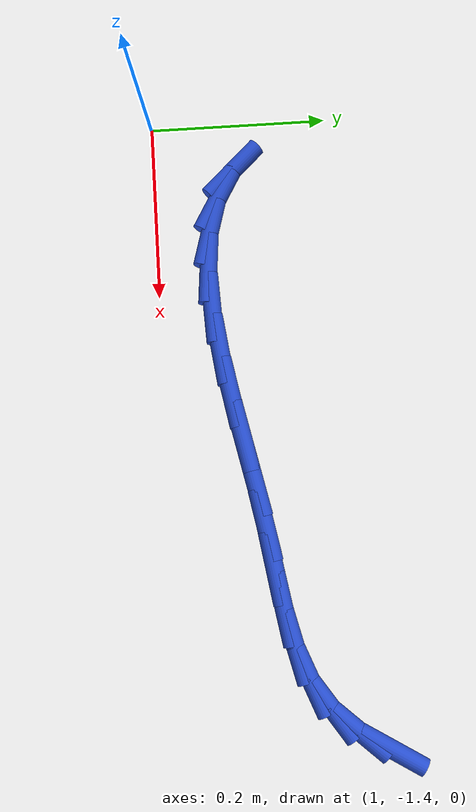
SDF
<sdf version="1.6">
 <world name="default">
  <model name="ground_plane">
   <static>1</static>
   <link name="link">
    <collision name="collision">
     <geometry><plane><normal>0 0 1</normal><size>100 100</size></plane></geometry>
     <surface><friction><ode><mu>100</mu><mu2>50</mu2></ode></friction></surface>
    </collision>
    <visual name="visual">
     <cast_shadows>0</cast_shadows>
     <geometry><plane><normal>0 0 1</normal><size>100 100</size></plane></geometry>
     <material>
      <script><uri>file://media/materials/scripts/gazebo.material</uri><name>Gazebo/WhiteGlow</name></script>
     </material>
    </visual>
   </link>
  </model>
  <model name="line">
   <link name="link_135">
    <pose>1.705742062912306 -1.1776208175139813 0.01 0 1.57 1.013647777230518</pose>
    <collision name="collision">
     <geometry><cylinder><radius>0.01</radius><length>0.08</length></cylinder></geometry>
    </collision>
    <visual name="visual">
     <material>
      <script><name>Gazebo/Blue</name><uri>file://media/materials/scripts/gazebo.material</uri></script>
     </material>
     <geometry><cylinder><radius>0.01</radius><length>0.08</length></cylinder></geometry>
    </visual>
   </link>
   <link name="link_136">
    <pose>1.6851977276796983 -1.210598106695495 0.01 0 1.57 0.8275461408577619</pose>
    <collision name="collision">
     <geometry><cylinder><radius>0.01</radius><length>0.08</length></cylinder></geometry>
    </collision>
    <visual name="visual">
     <material>
      <script><name>Gazebo/Blue</name><uri>file://media/materials/scripts/gazebo.material</uri></script>
     </material>
     <geometry><cylinder><radius>0.01</radius><length>0.08</length></cylinder></geometry>
    </visual>
   </link>
   <link name="link_137">
    <pose>1.660251027510578 -1.2377416043370164 0.01 0 1.57 0.587581772900265</pose>
    <collision name="collision">
     <geometry><cylinder><radius>0.01</radius><length>0.08</length></cylinder></geometry>
    </collision>
    <visual name="visual">
     <material>
      <script><name>Gazebo/Blue</name><uri>file://media/materials/scripts/gazebo.material</uri></script>
     </material>
     <geometry><cylinder><radius>0.01</radius><length>0.08</length></cylinder></geometry>
    </visual>
   </link>
   <link name="link_138">
    <pose>1.629923951497857 -1.2579412253683173 0.01 0 1.57 0.37062882357609594</pose>
    <collision name="collision">
     <geometry><cylinder><radius>0.01</radius><length>0.08</length></cylinder></geometry>
    </collision>
    <visual name="visual">
     <material>
      <script><name>Gazebo/Blue</name><uri>file://media/materials/scripts/gazebo.material</uri></script>
     </material>
     <geometry><cylinder><radius>0.01</radius><length>0.08</length></cylinder></geometry>
    </visual>
   </link>
   <link name="link_139">
    <pose>1.5942352251967844 -1.2718093919139792 0.01 0 1.57 0.23361269516340866</pose>
    <collision name="collision">
     <geometry><cylinder><radius>0.01</radius><length>0.08</length></cylinder></geometry>
    </collision>
    <visual name="visual">
     <material>
      <script><name>Gazebo/Blue</name><uri>file://media/materials/scripts/gazebo.material</uri></script>
     </material>
     <geometry><cylinder><radius>0.01</radius><length>0.08</length></cylinder></geometry>
    </visual>
   </link>
   <link name="link_140">
    <pose>1.5540248169866964 -1.2813777544770235 0.01 0 1.57 0.16584200800028726</pose>
    <collision name="collision">
     <geometry><cylinder><radius>0.01</radius><length>0.08</length></cylinder></geometry>
    </collision>
    <visual name="visual">
     <material>
      <script><name>Gazebo/Blue</name><uri>file://media/materials/scripts/gazebo.material</uri></script>
     </material>
     <geometry><cylinder><radius>0.01</radius><length>0.08</length></cylinder></geometry>
    </visual>
   </link>
   <link name="link_141">
    <pose>1.5101571872488413 -1.2887202893417595 0.01 0 1.57 0.15290393649491638</pose>
    <collision name="collision">
     <geometry><cylinder><radius>0.01</radius><length>0.08</length></cylinder></geometry>
    </collision>
    <visual name="visual">
     <material>
      <script><name>Gazebo/Blue</name><uri>file://media/materials/scripts/gazebo.material</uri></script>
     </material>
     <geometry><cylinder><radius>0.01</radius><length>0.08</length></cylinder></geometry>
    </visual>
   </link>
   <link name="link_142">
    <pose>1.4634967963644623 -1.295910972792494 0.01 0 1.57 0.18080520853089552</pose>
    <collision name="collision">
     <geometry><cylinder><radius>0.01</radius><length>0.08</length></cylinder></geometry>
    </collision>
    <visual name="visual">
     <material>
      <script><name>Gazebo/Blue</name><uri>file://media/materials/scripts/gazebo.material</uri></script>
     </material>
     <geometry><cylinder><radius>0.01</radius><length>0.08</length></cylinder></geometry>
    </visual>
   </link>
   <link name="link_143">
    <pose>1.4149072443304418 -1.3047932168797016 0.01 0 1.57 0.2046040755746543</pose>
    <collision name="collision">
     <geometry><cylinder><radius>0.01</radius><length>0.08</length></cylinder></geometry>
    </collision>
    <visual name="visual">
     <material>
      <script><name>Gazebo/Blue</name><uri>file://media/materials/scripts/gazebo.material</uri></script>
     </material>
     <geometry><cylinder><radius>0.01</radius><length>0.08</length></cylinder></geometry>
    </visual>
   </link>
   <link name="link_144">
    <pose>1.3652442508089595 -1.3150986759247514 0.01 0 1.57 0.20412954738748615</pose>
    <collision name="collision">
     <geometry><cylinder><radius>0.01</radius><length>0.08</length></cylinder></geometry>
    </collision>
    <visual name="visual">
     <material>
      <script><name>Gazebo/Blue</name><uri>file://media/materials/scripts/gazebo.material</uri></script>
     </material>
     <geometry><cylinder><radius>0.01</radius><length>0.08</length></cylinder></geometry>
    </visual>
   </link>
   <link name="link_145">
    <pose>1.315359305635462 -1.3254255029915205 0.01 0 1.57 0.17945993364144014</pose>
    <collision name="collision">
     <geometry><cylinder><radius>0.01</radius><length>0.08</length></cylinder></geometry>
    </collision>
    <visual name="visual">
     <material>
      <script><name>Gazebo/Blue</name><uri>file://media/materials/scripts/gazebo.material</uri></script>
     </material>
     <geometry><cylinder><radius>0.01</radius><length>0.08</length></cylinder></geometry>
    </visual>
   </link>
   <link name="link_146">
    <pose>1.2661038582057738 -1.334361014207248 0.01 0 1.57 0.1276449675473369</pose>
    <collision name="collision">
     <geometry><cylinder><radius>0.01</radius><length>0.08</length></cylinder></geometry>
    </collision>
    <visual name="visual">
     <material>
      <script><name>Gazebo/Blue</name><uri>file://media/materials/scripts/gazebo.material</uri></script>
     </material>
     <geometry><cylinder><radius>0.01</radius><length>0.08</length></cylinder></geometry>
    </visual>
   </link>
   <link name="link_147">
    <pose>1.2183293579157168 -1.340492525699173 0.01 0 1.57 0.042112834284239974</pose>
    <collision name="collision">
     <geometry><cylinder><radius>0.01</radius><length>0.08</length></cylinder></geometry>
    </collision>
    <visual name="visual">
     <material>
      <script><name>Gazebo/Blue</name><uri>file://media/materials/scripts/gazebo.material</uri></script>
     </material>
     <geometry><cylinder><radius>0.01</radius><length>0.08</length></cylinder></geometry>
    </visual>
   </link>
   <link name="link_148">
    <pose>1.1728872541611157 -1.3424073535945364 0.01 0 1.57 -0.08767556895092869</pose>
    <collision name="collision">
     <geometry><cylinder><radius>0.01</radius><length>0.08</length></cylinder></geometry>
    </collision>
    <visual name="visual">
     <material>
      <script><name>Gazebo/Blue</name><uri>file://media/materials/scripts/gazebo.material</uri></script>
     </material>
     <geometry><cylinder><radius>0.01</radius><length>0.08</length></cylinder></geometry>
    </visual>
   </link>
   <link name="link_149">
    <pose>1.130628996337794 -1.3386928140205774 0.01 0 1.57 -0.27432219012937786</pose>
    <collision name="collision">
     <geometry><cylinder><radius>0.01</radius><length>0.08</length></cylinder></geometry>
    </collision>
    <visual name="visual">
     <material>
      <script><name>Gazebo/Blue</name><uri>file://media/materials/scripts/gazebo.material</uri></script>
     </material>
     <geometry><cylinder><radius>0.01</radius><length>0.08</length></cylinder></geometry>
    </visual>
   </link>
   <link name="link_150">
    <pose>1.0924060338415749 -1.327936223104536 0.01 0 1.57 -0.5228031453505603</pose>
    <collision name="collision">
     <geometry><cylinder><radius>0.01</radius><length>0.08</length></cylinder></geometry>
    </collision>
    <visual name="visual">
     <material>
      <script><name>Gazebo/Blue</name><uri>file://media/materials/scripts/gazebo.material</uri></script>
     </material>
     <geometry><cylinder><radius>0.01</radius><length>0.08</length></cylinder></geometry>
    </visual>
   </link>
   <link name="link_151">
    <pose>1.059069816068282 -1.3087248969736511 0.01 0 1.57 -0.8115179447605622</pose>
    <collision name="collision">
     <geometry><cylinder><radius>0.01</radius><length>0.08</length></cylinder></geometry>
    </collision>
    <visual name="visual">
     <material>
      <script><name>Gazebo/Blue</name><uri>file://media/materials/scripts/gazebo.material</uri></script>
     </material>
     <geometry><cylinder><radius>0.01</radius><length>0.08</length></cylinder></geometry>
    </visual>
   </link>
  </model>
 </world>
</sdf>
